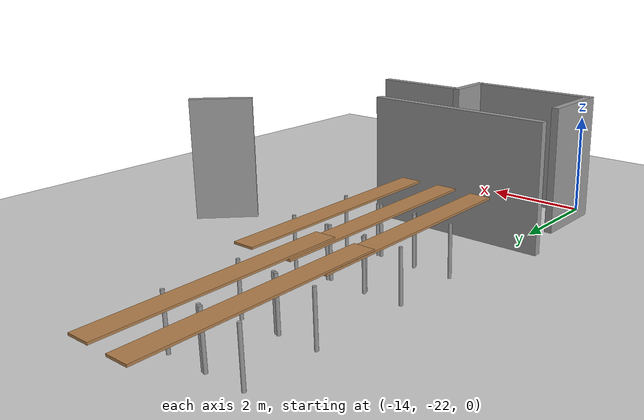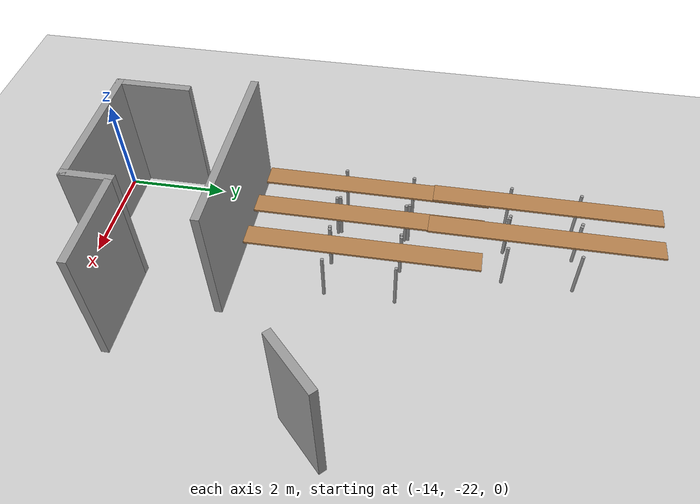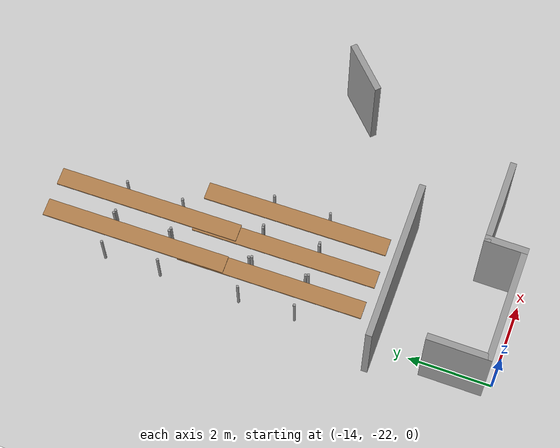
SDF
<sdf version="1.6">
 <world name="default">
  <model name="ground_plane">
   <static>1</static>
   <link name="link">
    <collision name="collision">
     <geometry><plane><normal>0 0 1</normal><size>100 100</size></plane></geometry>
     <surface><friction><ode><mu>100</mu><mu2>50</mu2></ode></friction></surface>
    </collision>
    <visual name="visual">
     <cast_shadows>0</cast_shadows>
     <geometry><plane><normal>0 0 1</normal><size>100 100</size></plane></geometry>
     <material>
      <script><uri>file://media/materials/scripts/gazebo.material</uri><name>Gazebo/Grey</name></script>
     </material>
    </visual>
   </link>
  </model>
  <model name="ca_vignal_1">
   <pose>-8.21048 -6.13752 0 0 -0 0</pose>
   <link name="Wall_14">
    <collision name="Wall_14_Collision">
     <geometry><box><size>3.75 0.15 2.5</size></box></geometry>
     <pose>0 0 1.25 0 -0 0</pose>
    </collision>
    <visual name="Wall_14_Visual">
     <pose>0 0 1.25 0 -0 0</pose>
     <geometry><box><size>3.75 0.15 2.5</size></box></geometry>
     <material>
      <script><uri>file://media/materials/scripts/gazebo.material</uri><name>Gazebo/Grey</name></script>
      <ambient>1 1 1 1</ambient>
     </material>
    </visual>
    <pose>-4.55164 -13.0277 0 0 -0 0</pose>
   </link>
   <link name="Wall_44">
    <collision name="Wall_44_Collision">
     <geometry><box><size>1.25 0.15 2.5</size></box></geometry>
     <pose>0 0 1.25 0 -0 0</pose>
    </collision>
    <visual name="Wall_44_Visual">
     <pose>0 0 1.25 0 -0 0</pose>
     <geometry><box><size>1.25 0.15 2.5</size></box></geometry>
     <material>
      <script><uri>file://media/materials/scripts/gazebo.material</uri><name>Gazebo/Grey</name></script>
      <ambient>1 1 1 1</ambient>
     </material>
    </visual>
    <pose>-0.323158 -10.8959 0 0 -0 0.785398</pose>
   </link>
   <link name="Wall_65">
    <collision name="Wall_65_Collision">
     <geometry><box><size>1.5 0.15 2.5</size></box></geometry>
     <pose>0 0 1.25 0 -0 0</pose>
    </collision>
    <visual name="Wall_65_Visual">
     <pose>0 0 1.25 0 -0 0</pose>
     <geometry><box><size>1.5 0.15 2.5</size></box></geometry>
     <material>
      <script><uri>file://media/materials/scripts/gazebo.material</uri><name>Gazebo/Grey</name></script>
      <ambient>1 1 1 1</ambient>
     </material>
    </visual>
    <pose>-6.01238 -14.9495 0 0 0 -1.5708</pose>
   </link>
   <link name="Wall_66">
    <collision name="Wall_66_Collision">
     <geometry><box><size>2.75 0.15 2.5</size></box></geometry>
     <pose>0 0 1.25 0 -0 0</pose>
    </collision>
    <visual name="Wall_66_Visual">
     <pose>0 0 1.25 0 -0 0</pose>
     <geometry><box><size>2.75 0.15 2.5</size></box></geometry>
     <material>
      <script><uri>file://media/materials/scripts/gazebo.material</uri><name>Gazebo/Grey</name></script>
      <ambient>1 1 1 1</ambient>
     </material>
    </visual>
    <pose>-4.71238 -15.6245 0 0 -0 0</pose>
   </link>
   <link name="Wall_67">
    <collision name="Wall_67_Collision">
     <geometry><box><size>1 0.15 2.5</size></box></geometry>
     <pose>0 0 1.25 0 -0 0</pose>
    </collision>
    <visual name="Wall_67_Visual">
     <pose>0 0 1.25 0 -0 0</pose>
     <geometry><box><size>1 0.15 2.5</size></box></geometry>
     <material>
      <script><uri>file://media/materials/scripts/gazebo.material</uri><name>Gazebo/Grey</name></script>
      <ambient>1 1 1 1</ambient>
     </material>
    </visual>
    <pose>-3.41238 -15.1995 0 0 -0 1.5708</pose>
   </link>
   <link name="Wall_68">
    <collision name="Wall_68_Collision">
     <geometry><box><size>2 0.15 2.5</size></box></geometry>
     <pose>0 0 1.25 0 -0 0</pose>
    </collision>
    <visual name="Wall_68_Visual">
     <pose>0 0 1.25 0 -0 0</pose>
     <geometry><box><size>2 0.15 2.5</size></box></geometry>
     <material>
      <script><uri>file://media/materials/scripts/gazebo.material</uri><name>Gazebo/Grey</name></script>
      <ambient>1 1 1 1</ambient>
     </material>
    </visual>
    <pose>-2.48738 -14.7745 0 0 -0 0</pose>
   </link>
   <static>1</static>
  </model>
  <model name="tablesclass">
   <link name="link">
    <inertial>
     <inertia><ixx>0</ixx><ixy>0</ixy><ixz>0</ixz><iyy>0</iyy><iyz>0</iyz><izz>0</izz></inertia>
     <mass>1.73923</mass>
    </inertial>
    <visual name="front_right_leg">
     <pose>0.68 -0.38 0.5 0 -0 0</pose>
     <geometry><cylinder><radius>0.0324505</radius><length>1</length></cylinder></geometry>
     <material>
      <script><uri>file://media/materials/scripts/gazebo.material</uri><name>Gazebo/Grey</name></script>
      <ambient>0.3 0.3 0.3 1</ambient>
      <diffuse>0.7 0.7 0.7 1</diffuse>
      <specular>0.01 0.01 0.01 1</specular>
      <emissive>0 0 0 1</emissive>
     </material>
    </visual>
    <visual name="back_left_leg">
     <pose>-0.68 0.38 0.5 0 -0 0</pose>
     <geometry><cylinder><radius>0.0324505</radius><length>1</length></cylinder></geometry>
     <material>
      <script><uri>file://media/materials/scripts/gazebo.material</uri><name>Gazebo/Grey</name></script>
      <ambient>0.3 0.3 0.3 1</ambient>
      <diffuse>0.7 0.7 0.7 1</diffuse>
      <specular>0.01 0.01 0.01 1</specular>
      <emissive>0 0 0 1</emissive>
     </material>
    </visual>
    <visual name="front_left_leg">
     <pose>0.68 0.38 0.5 0 -0 0</pose>
     <geometry><cylinder><radius>0.0324505</radius><length>1</length></cylinder></geometry>
     <material>
      <script><uri>file://media/materials/scripts/gazebo.material</uri><name>Gazebo/Grey</name></script>
      <ambient>0.3 0.3 0.3 1</ambient>
      <diffuse>0.7 0.7 0.7 1</diffuse>
      <specular>0.01 0.01 0.01 1</specular>
      <emissive>0 0 0 1</emissive>
     </material>
    </visual>
    <visual name="visual1">
     <pose>0 0 1 0 -0 0</pose>
     <geometry><box><size>4.38513 0.412326 0.04</size></box></geometry>
     <material>
      <script><uri>file://media/materials/scripts/gazebo.material</uri><name>Gazebo/Wood</name></script>
      <ambient>1 1 1 1</ambient>
      <diffuse>1 1 1 1</diffuse>
      <specular>0.2 0.2 0.2 1</specular>
      <emissive>0 0 0 1</emissive>
     </material>
    </visual>
    <visual name="back_right_leg">
     <pose>-0.68 -0.38 0.5 0 -0 0</pose>
     <geometry><cylinder><radius>0.0324505</radius><length>1</length></cylinder></geometry>
     <material>
      <script><uri>file://media/materials/scripts/gazebo.material</uri><name>Gazebo/Grey</name></script>
      <ambient>0.3 0.3 0.3 1</ambient>
      <diffuse>0.7 0.7 0.7 1</diffuse>
      <specular>0.01 0.01 0.01 1</specular>
      <emissive>0 0 0 1</emissive>
     </material>
    </visual>
    <collision name="front_left_leg">
     <pose>0.68 0.38 0.5 0 -0 0</pose>
     <geometry><cylinder><radius>0.03245</radius><length>1</length></cylinder></geometry>
     <surface>
      <friction>
       <ode><mu>1</mu><mu2>1</mu2><fdir1>0 0 0</fdir1><slip1>0</slip1><slip2>0</slip2></ode>
       <torsional>
        <coefficient>1</coefficient>
        <patch_radius>0</patch_radius>
        <surface_radius>0</surface_radius>
        <use_patch_radius>1</use_patch_radius>
        <ode><slip>0</slip></ode>
       </torsional>
      </friction>
      <bounce><restitution_coefficient>0</restitution_coefficient><threshold>1e+06</threshold></bounce>
      <contact>
       <collide_without_contact>0</collide_without_contact>
       <collide_without_contact_bitmask>1</collide_without_contact_bitmask>
       <collide_bitmask>1</collide_bitmask>
       <ode>
        <soft_cfm>0</soft_cfm>
        <soft_erp>0.2</soft_erp>
        <kp>1e+13</kp>
        <kd>1</kd>
        <max_vel>0.01</max_vel>
        <min_depth>0</min_depth>
       </ode>
       <bullet>
        <split_impulse>1</split_impulse>
        <split_impulse_penetration_threshold>-0.01</split_impulse_penetration_threshold>
        <soft_cfm>0</soft_cfm>
        <soft_erp>0.2</soft_erp>
        <kp>1e+13</kp>
        <kd>1</kd>
       </bullet>
      </contact>
     </surface>
    </collision>
    <collision name="front_right_leg">
     <pose>0.68 -0.38 0.5 0 -0 0</pose>
     <geometry><cylinder><radius>0.03245</radius><length>1</length></cylinder></geometry>
     <surface>
      <friction>
       <ode><mu>1</mu><mu2>1</mu2><fdir1>0 0 0</fdir1><slip1>0</slip1><slip2>0</slip2></ode>
       <torsional>
        <coefficient>1</coefficient>
        <patch_radius>0</patch_radius>
        <surface_radius>0</surface_radius>
        <use_patch_radius>1</use_patch_radius>
        <ode><slip>0</slip></ode>
       </torsional>
      </friction>
      <bounce><restitution_coefficient>0</restitution_coefficient><threshold>1e+06</threshold></bounce>
      <contact>
       <collide_without_contact>0</collide_without_contact>
       <collide_without_contact_bitmask>1</collide_without_contact_bitmask>
       <collide_bitmask>1</collide_bitmask>
       <ode>
        <soft_cfm>0</soft_cfm>
        <soft_erp>0.2</soft_erp>
        <kp>1e+13</kp>
        <kd>1</kd>
        <max_vel>0.01</max_vel>
        <min_depth>0</min_depth>
       </ode>
       <bullet>
        <split_impulse>1</split_impulse>
        <split_impulse_penetration_threshold>-0.01</split_impulse_penetration_threshold>
        <soft_cfm>0</soft_cfm>
        <soft_erp>0.2</soft_erp>
        <kp>1e+13</kp>
        <kd>1</kd>
       </bullet>
      </contact>
     </surface>
    </collision>
    <collision name="back_left_leg">
     <pose>-0.68 0.38 0.5 0 -0 0</pose>
     <geometry><cylinder><radius>0.03245</radius><length>1</length></cylinder></geometry>
     <surface>
      <friction>
       <ode><mu>1</mu><mu2>1</mu2><fdir1>0 0 0</fdir1><slip1>0</slip1><slip2>0</slip2></ode>
       <torsional>
        <coefficient>1</coefficient>
        <patch_radius>0</patch_radius>
        <surface_radius>0</surface_radius>
        <use_patch_radius>1</use_patch_radius>
        <ode><slip>0</slip></ode>
       </torsional>
      </friction>
      <bounce><restitution_coefficient>0</restitution_coefficient><threshold>1e+06</threshold></bounce>
      <contact>
       <collide_without_contact>0</collide_without_contact>
       <collide_without_contact_bitmask>1</collide_without_contact_bitmask>
       <collide_bitmask>1</collide_bitmask>
       <ode>
        <soft_cfm>0</soft_cfm>
        <soft_erp>0.2</soft_erp>
        <kp>1e+13</kp>
        <kd>1</kd>
        <max_vel>0.01</max_vel>
        <min_depth>0</min_depth>
       </ode>
       <bullet>
        <split_impulse>1</split_impulse>
        <split_impulse_penetration_threshold>-0.01</split_impulse_penetration_threshold>
        <soft_cfm>0</soft_cfm>
        <soft_erp>0.2</soft_erp>
        <kp>1e+13</kp>
        <kd>1</kd>
       </bullet>
      </contact>
     </surface>
    </collision>
    <collision name="back_right_leg">
     <pose>-0.68 -0.38 0.5 0 -0 0</pose>
     <geometry><cylinder><radius>0.03245</radius><length>1</length></cylinder></geometry>
     <surface>
      <friction>
       <ode><mu>1</mu><mu2>1</mu2><fdir1>0 0 0</fdir1><slip1>0</slip1><slip2>0</slip2></ode>
       <torsional>
        <coefficient>1</coefficient>
        <patch_radius>0</patch_radius>
        <surface_radius>0</surface_radius>
        <use_patch_radius>1</use_patch_radius>
        <ode><slip>0</slip></ode>
       </torsional>
      </friction>
      <bounce><restitution_coefficient>0</restitution_coefficient><threshold>1e+06</threshold></bounce>
      <contact>
       <collide_without_contact>0</collide_without_contact>
       <collide_without_contact_bitmask>1</collide_without_contact_bitmask>
       <collide_bitmask>1</collide_bitmask>
       <ode>
        <soft_cfm>0</soft_cfm>
        <soft_erp>0.2</soft_erp>
        <kp>1e+13</kp>
        <kd>1</kd>
        <max_vel>0.01</max_vel>
        <min_depth>0</min_depth>
       </ode>
       <bullet>
        <split_impulse>1</split_impulse>
        <split_impulse_penetration_threshold>-0.01</split_impulse_penetration_threshold>
        <soft_cfm>0</soft_cfm>
        <soft_erp>0.2</soft_erp>
        <kp>1e+13</kp>
        <kd>1</kd>
       </bullet>
      </contact>
     </surface>
    </collision>
    <collision name="surface">
     <pose>0 0 1 0 -0 0</pose>
     <geometry><box><size>4.69836 0.412326 0.03</size></box></geometry>
     <surface>
      <friction>
       <ode><mu>0.6</mu><mu2>0.6</mu2><fdir1>0 0 0</fdir1><slip1>0</slip1><slip2>0</slip2></ode>
       <torsional>
        <coefficient>1</coefficient>
        <patch_radius>0</patch_radius>
        <surface_radius>0</surface_radius>
        <use_patch_radius>1</use_patch_radius>
        <ode><slip>0</slip></ode>
       </torsional>
      </friction>
      <bounce><restitution_coefficient>0</restitution_coefficient><threshold>1e+06</threshold></bounce>
      <contact>
       <collide_without_contact>0</collide_without_contact>
       <collide_without_contact_bitmask>1</collide_without_contact_bitmask>
       <collide_bitmask>1</collide_bitmask>
       <ode>
        <soft_cfm>0</soft_cfm>
        <soft_erp>0.2</soft_erp>
        <kp>1e+13</kp>
        <kd>1</kd>
        <max_vel>0.01</max_vel>
        <min_depth>0</min_depth>
       </ode>
       <bullet>
        <split_impulse>1</split_impulse>
        <split_impulse_penetration_threshold>-0.01</split_impulse_penetration_threshold>
        <soft_cfm>0</soft_cfm>
        <soft_erp>0.2</soft_erp>
        <kp>1e+13</kp>
        <kd>1</kd>
       </bullet>
      </contact>
     </surface>
    </collision>
   </link>
   <static>0</static>
   <pose>-13.6288 -16.5817 0.004332 -3e-06 -0.008367 -1.5634</pose>
  </model>
  <model name="tablesclass_clone">
   <link name="link">
    <inertial>
     <inertia><ixx>0</ixx><ixy>0</ixy><ixz>0</ixz><iyy>0</iyy><iyz>0</iyz><izz>0</izz></inertia>
     <mass>1.73923</mass>
    </inertial>
    <visual name="front_right_leg">
     <pose>0.68 -0.38 0.5 0 -0 0</pose>
     <geometry><cylinder><radius>0.0324505</radius><length>1</length></cylinder></geometry>
     <material>
      <script><uri>file://media/materials/scripts/gazebo.material</uri><name>Gazebo/Grey</name></script>
      <ambient>0.3 0.3 0.3 1</ambient>
      <diffuse>0.7 0.7 0.7 1</diffuse>
      <specular>0.01 0.01 0.01 1</specular>
      <emissive>0 0 0 1</emissive>
     </material>
    </visual>
    <visual name="back_left_leg">
     <pose>-0.68 0.38 0.5 0 -0 0</pose>
     <geometry><cylinder><radius>0.0324505</radius><length>1</length></cylinder></geometry>
     <material>
      <script><uri>file://media/materials/scripts/gazebo.material</uri><name>Gazebo/Grey</name></script>
      <ambient>0.3 0.3 0.3 1</ambient>
      <diffuse>0.7 0.7 0.7 1</diffuse>
      <specular>0.01 0.01 0.01 1</specular>
      <emissive>0 0 0 1</emissive>
     </material>
    </visual>
    <visual name="front_left_leg">
     <pose>0.68 0.38 0.5 0 -0 0</pose>
     <geometry><cylinder><radius>0.0324505</radius><length>1</length></cylinder></geometry>
     <material>
      <script><uri>file://media/materials/scripts/gazebo.material</uri><name>Gazebo/Grey</name></script>
      <ambient>0.3 0.3 0.3 1</ambient>
      <diffuse>0.7 0.7 0.7 1</diffuse>
      <specular>0.01 0.01 0.01 1</specular>
      <emissive>0 0 0 1</emissive>
     </material>
    </visual>
    <visual name="visual1">
     <pose>0 0 1 0 -0 0</pose>
     <geometry><box><size>4.38513 0.412326 0.04</size></box></geometry>
     <material>
      <script><uri>file://media/materials/scripts/gazebo.material</uri><name>Gazebo/Wood</name></script>
      <ambient>1 1 1 1</ambient>
      <diffuse>1 1 1 1</diffuse>
      <specular>0.2 0.2 0.2 1</specular>
      <emissive>0 0 0 1</emissive>
     </material>
    </visual>
    <visual name="back_right_leg">
     <pose>-0.68 -0.38 0.5 0 -0 0</pose>
     <geometry><cylinder><radius>0.0324505</radius><length>1</length></cylinder></geometry>
     <material>
      <script><uri>file://media/materials/scripts/gazebo.material</uri><name>Gazebo/Grey</name></script>
      <ambient>0.3 0.3 0.3 1</ambient>
      <diffuse>0.7 0.7 0.7 1</diffuse>
      <specular>0.01 0.01 0.01 1</specular>
      <emissive>0 0 0 1</emissive>
     </material>
    </visual>
    <collision name="front_left_leg">
     <pose>0.68 0.38 0.5 0 -0 0</pose>
     <geometry><cylinder><radius>0.03245</radius><length>1</length></cylinder></geometry>
     <surface>
      <friction>
       <ode><mu>1</mu><mu2>1</mu2><fdir1>0 0 0</fdir1><slip1>0</slip1><slip2>0</slip2></ode>
       <torsional>
        <coefficient>1</coefficient>
        <patch_radius>0</patch_radius>
        <surface_radius>0</surface_radius>
        <use_patch_radius>1</use_patch_radius>
        <ode><slip>0</slip></ode>
       </torsional>
      </friction>
      <bounce><restitution_coefficient>0</restitution_coefficient><threshold>1e+06</threshold></bounce>
      <contact>
       <collide_without_contact>0</collide_without_contact>
       <collide_without_contact_bitmask>1</collide_without_contact_bitmask>
       <collide_bitmask>1</collide_bitmask>
       <ode>
        <soft_cfm>0</soft_cfm>
        <soft_erp>0.2</soft_erp>
        <kp>1e+13</kp>
        <kd>1</kd>
        <max_vel>0.01</max_vel>
        <min_depth>0</min_depth>
       </ode>
       <bullet>
        <split_impulse>1</split_impulse>
        <split_impulse_penetration_threshold>-0.01</split_impulse_penetration_threshold>
        <soft_cfm>0</soft_cfm>
        <soft_erp>0.2</soft_erp>
        <kp>1e+13</kp>
        <kd>1</kd>
       </bullet>
      </contact>
     </surface>
    </collision>
    <collision name="front_right_leg">
     <pose>0.68 -0.38 0.5 0 -0 0</pose>
     <geometry><cylinder><radius>0.03245</radius><length>1</length></cylinder></geometry>
     <surface>
      <friction>
       <ode><mu>1</mu><mu2>1</mu2><fdir1>0 0 0</fdir1><slip1>0</slip1><slip2>0</slip2></ode>
       <torsional>
        <coefficient>1</coefficient>
        <patch_radius>0</patch_radius>
        <surface_radius>0</surface_radius>
        <use_patch_radius>1</use_patch_radius>
        <ode><slip>0</slip></ode>
       </torsional>
      </friction>
      <bounce><restitution_coefficient>0</restitution_coefficient><threshold>1e+06</threshold></bounce>
      <contact>
       <collide_without_contact>0</collide_without_contact>
       <collide_without_contact_bitmask>1</collide_without_contact_bitmask>
       <collide_bitmask>1</collide_bitmask>
       <ode>
        <soft_cfm>0</soft_cfm>
        <soft_erp>0.2</soft_erp>
        <kp>1e+13</kp>
        <kd>1</kd>
        <max_vel>0.01</max_vel>
        <min_depth>0</min_depth>
       </ode>
       <bullet>
        <split_impulse>1</split_impulse>
        <split_impulse_penetration_threshold>-0.01</split_impulse_penetration_threshold>
        <soft_cfm>0</soft_cfm>
        <soft_erp>0.2</soft_erp>
        <kp>1e+13</kp>
        <kd>1</kd>
       </bullet>
      </contact>
     </surface>
    </collision>
    <collision name="back_left_leg">
     <pose>-0.68 0.38 0.5 0 -0 0</pose>
     <geometry><cylinder><radius>0.03245</radius><length>1</length></cylinder></geometry>
     <surface>
      <friction>
       <ode><mu>1</mu><mu2>1</mu2><fdir1>0 0 0</fdir1><slip1>0</slip1><slip2>0</slip2></ode>
       <torsional>
        <coefficient>1</coefficient>
        <patch_radius>0</patch_radius>
        <surface_radius>0</surface_radius>
        <use_patch_radius>1</use_patch_radius>
        <ode><slip>0</slip></ode>
       </torsional>
      </friction>
      <bounce><restitution_coefficient>0</restitution_coefficient><threshold>1e+06</threshold></bounce>
      <contact>
       <collide_without_contact>0</collide_without_contact>
       <collide_without_contact_bitmask>1</collide_without_contact_bitmask>
       <collide_bitmask>1</collide_bitmask>
       <ode>
        <soft_cfm>0</soft_cfm>
        <soft_erp>0.2</soft_erp>
        <kp>1e+13</kp>
        <kd>1</kd>
        <max_vel>0.01</max_vel>
        <min_depth>0</min_depth>
       </ode>
       <bullet>
        <split_impulse>1</split_impulse>
        <split_impulse_penetration_threshold>-0.01</split_impulse_penetration_threshold>
        <soft_cfm>0</soft_cfm>
        <soft_erp>0.2</soft_erp>
        <kp>1e+13</kp>
        <kd>1</kd>
       </bullet>
      </contact>
     </surface>
    </collision>
    <collision name="back_right_leg">
     <pose>-0.68 -0.38 0.5 0 -0 0</pose>
     <geometry><cylinder><radius>0.03245</radius><length>1</length></cylinder></geometry>
     <surface>
      <friction>
       <ode><mu>1</mu><mu2>1</mu2><fdir1>0 0 0</fdir1><slip1>0</slip1><slip2>0</slip2></ode>
       <torsional>
        <coefficient>1</coefficient>
        <patch_radius>0</patch_radius>
        <surface_radius>0</surface_radius>
        <use_patch_radius>1</use_patch_radius>
        <ode><slip>0</slip></ode>
       </torsional>
      </friction>
      <bounce><restitution_coefficient>0</restitution_coefficient><threshold>1e+06</threshold></bounce>
      <contact>
       <collide_without_contact>0</collide_without_contact>
       <collide_without_contact_bitmask>1</collide_without_contact_bitmask>
       <collide_bitmask>1</collide_bitmask>
       <ode>
        <soft_cfm>0</soft_cfm>
        <soft_erp>0.2</soft_erp>
        <kp>1e+13</kp>
        <kd>1</kd>
        <max_vel>0.01</max_vel>
        <min_depth>0</min_depth>
       </ode>
       <bullet>
        <split_impulse>1</split_impulse>
        <split_impulse_penetration_threshold>-0.01</split_impulse_penetration_threshold>
        <soft_cfm>0</soft_cfm>
        <soft_erp>0.2</soft_erp>
        <kp>1e+13</kp>
        <kd>1</kd>
       </bullet>
      </contact>
     </surface>
    </collision>
    <collision name="surface">
     <pose>0 0 1 0 -0 0</pose>
     <geometry><box><size>4.69836 0.412326 0.03</size></box></geometry>
     <surface>
      <friction>
       <ode><mu>0.6</mu><mu2>0.6</mu2><fdir1>0 0 0</fdir1><slip1>0</slip1><slip2>0</slip2></ode>
       <torsional>
        <coefficient>1</coefficient>
        <patch_radius>0</patch_radius>
        <surface_radius>0</surface_radius>
        <use_patch_radius>1</use_patch_radius>
        <ode><slip>0</slip></ode>
       </torsional>
      </friction>
      <bounce><restitution_coefficient>0</restitution_coefficient><threshold>1e+06</threshold></bounce>
      <contact>
       <collide_without_contact>0</collide_without_contact>
       <collide_without_contact_bitmask>1</collide_without_contact_bitmask>
       <collide_bitmask>1</collide_bitmask>
       <ode>
        <soft_cfm>0</soft_cfm>
        <soft_erp>0.2</soft_erp>
        <kp>1e+13</kp>
        <kd>1</kd>
        <max_vel>0.01</max_vel>
        <min_depth>0</min_depth>
       </ode>
       <bullet>
        <split_impulse>1</split_impulse>
        <split_impulse_penetration_threshold>-0.01</split_impulse_penetration_threshold>
        <soft_cfm>0</soft_cfm>
        <soft_erp>0.2</soft_erp>
        <kp>1e+13</kp>
        <kd>1</kd>
       </bullet>
      </contact>
     </surface>
    </collision>
   </link>
   <static>0</static>
   <pose>-13.6453 -13.2879 0.006284 2e-06 -0.008821 -1.56384</pose>
  </model>
  <model name="tablesclass_clone_clone">
   <link name="link">
    <inertial>
     <inertia><ixx>0</ixx><ixy>0</ixy><ixz>0</ixz><iyy>0</iyy><iyz>0</iyz><izz>0</izz></inertia>
     <mass>1.73923</mass>
    </inertial>
    <visual name="front_right_leg">
     <pose>0.68 -0.38 0.5 0 -0 0</pose>
     <geometry><cylinder><radius>0.0324505</radius><length>1</length></cylinder></geometry>
     <material>
      <script><uri>file://media/materials/scripts/gazebo.material</uri><name>Gazebo/Grey</name></script>
      <ambient>0.3 0.3 0.3 1</ambient>
      <diffuse>0.7 0.7 0.7 1</diffuse>
      <specular>0.01 0.01 0.01 1</specular>
      <emissive>0 0 0 1</emissive>
     </material>
    </visual>
    <visual name="back_left_leg">
     <pose>-0.68 0.38 0.5 0 -0 0</pose>
     <geometry><cylinder><radius>0.0324505</radius><length>1</length></cylinder></geometry>
     <material>
      <script><uri>file://media/materials/scripts/gazebo.material</uri><name>Gazebo/Grey</name></script>
      <ambient>0.3 0.3 0.3 1</ambient>
      <diffuse>0.7 0.7 0.7 1</diffuse>
      <specular>0.01 0.01 0.01 1</specular>
      <emissive>0 0 0 1</emissive>
     </material>
    </visual>
    <visual name="front_left_leg">
     <pose>0.68 0.38 0.5 0 -0 0</pose>
     <geometry><cylinder><radius>0.0324505</radius><length>1</length></cylinder></geometry>
     <material>
      <script><uri>file://media/materials/scripts/gazebo.material</uri><name>Gazebo/Grey</name></script>
      <ambient>0.3 0.3 0.3 1</ambient>
      <diffuse>0.7 0.7 0.7 1</diffuse>
      <specular>0.01 0.01 0.01 1</specular>
      <emissive>0 0 0 1</emissive>
     </material>
    </visual>
    <visual name="visual1">
     <pose>0 0 1 0 -0 0</pose>
     <geometry><box><size>4.38513 0.412326 0.04</size></box></geometry>
     <material>
      <script><uri>file://media/materials/scripts/gazebo.material</uri><name>Gazebo/Wood</name></script>
      <ambient>1 1 1 1</ambient>
      <diffuse>1 1 1 1</diffuse>
      <specular>0.2 0.2 0.2 1</specular>
      <emissive>0 0 0 1</emissive>
     </material>
    </visual>
    <visual name="back_right_leg">
     <pose>-0.68 -0.38 0.5 0 -0 0</pose>
     <geometry><cylinder><radius>0.0324505</radius><length>1</length></cylinder></geometry>
     <material>
      <script><uri>file://media/materials/scripts/gazebo.material</uri><name>Gazebo/Grey</name></script>
      <ambient>0.3 0.3 0.3 1</ambient>
      <diffuse>0.7 0.7 0.7 1</diffuse>
      <specular>0.01 0.01 0.01 1</specular>
      <emissive>0 0 0 1</emissive>
     </material>
    </visual>
    <collision name="front_left_leg">
     <pose>0.68 0.38 0.5 0 -0 0</pose>
     <geometry><cylinder><radius>0.03245</radius><length>1</length></cylinder></geometry>
     <surface>
      <friction>
       <ode><mu>1</mu><mu2>1</mu2><fdir1>0 0 0</fdir1><slip1>0</slip1><slip2>0</slip2></ode>
       <torsional>
        <coefficient>1</coefficient>
        <patch_radius>0</patch_radius>
        <surface_radius>0</surface_radius>
        <use_patch_radius>1</use_patch_radius>
        <ode><slip>0</slip></ode>
       </torsional>
      </friction>
      <bounce><restitution_coefficient>0</restitution_coefficient><threshold>1e+06</threshold></bounce>
      <contact>
       <collide_without_contact>0</collide_without_contact>
       <collide_without_contact_bitmask>1</collide_without_contact_bitmask>
       <collide_bitmask>1</collide_bitmask>
       <ode>
        <soft_cfm>0</soft_cfm>
        <soft_erp>0.2</soft_erp>
        <kp>1e+13</kp>
        <kd>1</kd>
        <max_vel>0.01</max_vel>
        <min_depth>0</min_depth>
       </ode>
       <bullet>
        <split_impulse>1</split_impulse>
        <split_impulse_penetration_threshold>-0.01</split_impulse_penetration_threshold>
        <soft_cfm>0</soft_cfm>
        <soft_erp>0.2</soft_erp>
        <kp>1e+13</kp>
        <kd>1</kd>
       </bullet>
      </contact>
     </surface>
    </collision>
    <collision name="front_right_leg">
     <pose>0.68 -0.38 0.5 0 -0 0</pose>
     <geometry><cylinder><radius>0.03245</radius><length>1</length></cylinder></geometry>
     <surface>
      <friction>
       <ode><mu>1</mu><mu2>1</mu2><fdir1>0 0 0</fdir1><slip1>0</slip1><slip2>0</slip2></ode>
       <torsional>
        <coefficient>1</coefficient>
        <patch_radius>0</patch_radius>
        <surface_radius>0</surface_radius>
        <use_patch_radius>1</use_patch_radius>
        <ode><slip>0</slip></ode>
       </torsional>
      </friction>
      <bounce><restitution_coefficient>0</restitution_coefficient><threshold>1e+06</threshold></bounce>
      <contact>
       <collide_without_contact>0</collide_without_contact>
       <collide_without_contact_bitmask>1</collide_without_contact_bitmask>
       <collide_bitmask>1</collide_bitmask>
       <ode>
        <soft_cfm>0</soft_cfm>
        <soft_erp>0.2</soft_erp>
        <kp>1e+13</kp>
        <kd>1</kd>
        <max_vel>0.01</max_vel>
        <min_depth>0</min_depth>
       </ode>
       <bullet>
        <split_impulse>1</split_impulse>
        <split_impulse_penetration_threshold>-0.01</split_impulse_penetration_threshold>
        <soft_cfm>0</soft_cfm>
        <soft_erp>0.2</soft_erp>
        <kp>1e+13</kp>
        <kd>1</kd>
       </bullet>
      </contact>
     </surface>
    </collision>
    <collision name="back_left_leg">
     <pose>-0.68 0.38 0.5 0 -0 0</pose>
     <geometry><cylinder><radius>0.03245</radius><length>1</length></cylinder></geometry>
     <surface>
      <friction>
       <ode><mu>1</mu><mu2>1</mu2><fdir1>0 0 0</fdir1><slip1>0</slip1><slip2>0</slip2></ode>
       <torsional>
        <coefficient>1</coefficient>
        <patch_radius>0</patch_radius>
        <surface_radius>0</surface_radius>
        <use_patch_radius>1</use_patch_radius>
        <ode><slip>0</slip></ode>
       </torsional>
      </friction>
      <bounce><restitution_coefficient>0</restitution_coefficient><threshold>1e+06</threshold></bounce>
      <contact>
       <collide_without_contact>0</collide_without_contact>
       <collide_without_contact_bitmask>1</collide_without_contact_bitmask>
       <collide_bitmask>1</collide_bitmask>
       <ode>
        <soft_cfm>0</soft_cfm>
        <soft_erp>0.2</soft_erp>
        <kp>1e+13</kp>
        <kd>1</kd>
        <max_vel>0.01</max_vel>
        <min_depth>0</min_depth>
       </ode>
       <bullet>
        <split_impulse>1</split_impulse>
        <split_impulse_penetration_threshold>-0.01</split_impulse_penetration_threshold>
        <soft_cfm>0</soft_cfm>
        <soft_erp>0.2</soft_erp>
        <kp>1e+13</kp>
        <kd>1</kd>
       </bullet>
      </contact>
     </surface>
    </collision>
    <collision name="back_right_leg">
     <pose>-0.68 -0.38 0.5 0 -0 0</pose>
     <geometry><cylinder><radius>0.03245</radius><length>1</length></cylinder></geometry>
     <surface>
      <friction>
       <ode><mu>1</mu><mu2>1</mu2><fdir1>0 0 0</fdir1><slip1>0</slip1><slip2>0</slip2></ode>
       <torsional>
        <coefficient>1</coefficient>
        <patch_radius>0</patch_radius>
        <surface_radius>0</surface_radius>
        <use_patch_radius>1</use_patch_radius>
        <ode><slip>0</slip></ode>
       </torsional>
      </friction>
      <bounce><restitution_coefficient>0</restitution_coefficient><threshold>1e+06</threshold></bounce>
      <contact>
       <collide_without_contact>0</collide_without_contact>
       <collide_without_contact_bitmask>1</collide_without_contact_bitmask>
       <collide_bitmask>1</collide_bitmask>
       <ode>
        <soft_cfm>0</soft_cfm>
        <soft_erp>0.2</soft_erp>
        <kp>1e+13</kp>
        <kd>1</kd>
        <max_vel>0.01</max_vel>
        <min_depth>0</min_depth>
       </ode>
       <bullet>
        <split_impulse>1</split_impulse>
        <split_impulse_penetration_threshold>-0.01</split_impulse_penetration_threshold>
        <soft_cfm>0</soft_cfm>
        <soft_erp>0.2</soft_erp>
        <kp>1e+13</kp>
        <kd>1</kd>
       </bullet>
      </contact>
     </surface>
    </collision>
    <collision name="surface">
     <pose>0 0 1 0 -0 0</pose>
     <geometry><box><size>4.69836 0.412326 0.03</size></box></geometry>
     <surface>
      <friction>
       <ode><mu>0.6</mu><mu2>0.6</mu2><fdir1>0 0 0</fdir1><slip1>0</slip1><slip2>0</slip2></ode>
       <torsional>
        <coefficient>1</coefficient>
        <patch_radius>0</patch_radius>
        <surface_radius>0</surface_radius>
        <use_patch_radius>1</use_patch_radius>
        <ode><slip>0</slip></ode>
       </torsional>
      </friction>
      <bounce><restitution_coefficient>0</restitution_coefficient><threshold>1e+06</threshold></bounce>
      <contact>
       <collide_without_contact>0</collide_without_contact>
       <collide_without_contact_bitmask>1</collide_without_contact_bitmask>
       <collide_bitmask>1</collide_bitmask>
       <ode>
        <soft_cfm>0</soft_cfm>
        <soft_erp>0.2</soft_erp>
        <kp>1e+13</kp>
        <kd>1</kd>
        <max_vel>0.01</max_vel>
        <min_depth>0</min_depth>
       </ode>
       <bullet>
        <split_impulse>1</split_impulse>
        <split_impulse_penetration_threshold>-0.01</split_impulse_penetration_threshold>
        <soft_cfm>0</soft_cfm>
        <soft_erp>0.2</soft_erp>
        <kp>1e+13</kp>
        <kd>1</kd>
       </bullet>
      </contact>
     </surface>
    </collision>
   </link>
   <static>0</static>
   <pose>-12.8409 -16.6374 0.004308 -6e-06 -0.008005 -1.56202</pose>
  </model>
  <model name="tablesclass_clone_0">
   <link name="link">
    <inertial>
     <inertia><ixx>0</ixx><ixy>0</ixy><ixz>0</ixz><iyy>0</iyy><iyz>0</iyz><izz>0</izz></inertia>
     <mass>1.73923</mass>
    </inertial>
    <visual name="front_right_leg">
     <pose>0.68 -0.38 0.5 0 -0 0</pose>
     <geometry><cylinder><radius>0.0324505</radius><length>1</length></cylinder></geometry>
     <material>
      <script><uri>file://media/materials/scripts/gazebo.material</uri><name>Gazebo/Grey</name></script>
      <ambient>0.3 0.3 0.3 1</ambient>
      <diffuse>0.7 0.7 0.7 1</diffuse>
      <specular>0.01 0.01 0.01 1</specular>
      <emissive>0 0 0 1</emissive>
     </material>
    </visual>
    <visual name="back_left_leg">
     <pose>-0.68 0.38 0.5 0 -0 0</pose>
     <geometry><cylinder><radius>0.0324505</radius><length>1</length></cylinder></geometry>
     <material>
      <script><uri>file://media/materials/scripts/gazebo.material</uri><name>Gazebo/Grey</name></script>
      <ambient>0.3 0.3 0.3 1</ambient>
      <diffuse>0.7 0.7 0.7 1</diffuse>
      <specular>0.01 0.01 0.01 1</specular>
      <emissive>0 0 0 1</emissive>
     </material>
    </visual>
    <visual name="front_left_leg">
     <pose>0.68 0.38 0.5 0 -0 0</pose>
     <geometry><cylinder><radius>0.0324505</radius><length>1</length></cylinder></geometry>
     <material>
      <script><uri>file://media/materials/scripts/gazebo.material</uri><name>Gazebo/Grey</name></script>
      <ambient>0.3 0.3 0.3 1</ambient>
      <diffuse>0.7 0.7 0.7 1</diffuse>
      <specular>0.01 0.01 0.01 1</specular>
      <emissive>0 0 0 1</emissive>
     </material>
    </visual>
    <visual name="visual1">
     <pose>0 0 1 0 -0 0</pose>
     <geometry><box><size>4.38513 0.412326 0.04</size></box></geometry>
     <material>
      <script><uri>file://media/materials/scripts/gazebo.material</uri><name>Gazebo/Wood</name></script>
      <ambient>1 1 1 1</ambient>
      <diffuse>1 1 1 1</diffuse>
      <specular>0.2 0.2 0.2 1</specular>
      <emissive>0 0 0 1</emissive>
     </material>
    </visual>
    <visual name="back_right_leg">
     <pose>-0.68 -0.38 0.5 0 -0 0</pose>
     <geometry><cylinder><radius>0.0324505</radius><length>1</length></cylinder></geometry>
     <material>
      <script><uri>file://media/materials/scripts/gazebo.material</uri><name>Gazebo/Grey</name></script>
      <ambient>0.3 0.3 0.3 1</ambient>
      <diffuse>0.7 0.7 0.7 1</diffuse>
      <specular>0.01 0.01 0.01 1</specular>
      <emissive>0 0 0 1</emissive>
     </material>
    </visual>
    <collision name="front_left_leg">
     <pose>0.68 0.38 0.5 0 -0 0</pose>
     <geometry><cylinder><radius>0.03245</radius><length>1</length></cylinder></geometry>
     <surface>
      <friction>
       <ode><mu>1</mu><mu2>1</mu2><fdir1>0 0 0</fdir1><slip1>0</slip1><slip2>0</slip2></ode>
       <torsional>
        <coefficient>1</coefficient>
        <patch_radius>0</patch_radius>
        <surface_radius>0</surface_radius>
        <use_patch_radius>1</use_patch_radius>
        <ode><slip>0</slip></ode>
       </torsional>
      </friction>
      <bounce><restitution_coefficient>0</restitution_coefficient><threshold>1e+06</threshold></bounce>
      <contact>
       <collide_without_contact>0</collide_without_contact>
       <collide_without_contact_bitmask>1</collide_without_contact_bitmask>
       <collide_bitmask>1</collide_bitmask>
       <ode>
        <soft_cfm>0</soft_cfm>
        <soft_erp>0.2</soft_erp>
        <kp>1e+13</kp>
        <kd>1</kd>
        <max_vel>0.01</max_vel>
        <min_depth>0</min_depth>
       </ode>
       <bullet>
        <split_impulse>1</split_impulse>
        <split_impulse_penetration_threshold>-0.01</split_impulse_penetration_threshold>
        <soft_cfm>0</soft_cfm>
        <soft_erp>0.2</soft_erp>
        <kp>1e+13</kp>
        <kd>1</kd>
       </bullet>
      </contact>
     </surface>
    </collision>
    <collision name="front_right_leg">
     <pose>0.68 -0.38 0.5 0 -0 0</pose>
     <geometry><cylinder><radius>0.03245</radius><length>1</length></cylinder></geometry>
     <surface>
      <friction>
       <ode><mu>1</mu><mu2>1</mu2><fdir1>0 0 0</fdir1><slip1>0</slip1><slip2>0</slip2></ode>
       <torsional>
        <coefficient>1</coefficient>
        <patch_radius>0</patch_radius>
        <surface_radius>0</surface_radius>
        <use_patch_radius>1</use_patch_radius>
        <ode><slip>0</slip></ode>
       </torsional>
      </friction>
      <bounce><restitution_coefficient>0</restitution_coefficient><threshold>1e+06</threshold></bounce>
      <contact>
       <collide_without_contact>0</collide_without_contact>
       <collide_without_contact_bitmask>1</collide_without_contact_bitmask>
       <collide_bitmask>1</collide_bitmask>
       <ode>
        <soft_cfm>0</soft_cfm>
        <soft_erp>0.2</soft_erp>
        <kp>1e+13</kp>
        <kd>1</kd>
        <max_vel>0.01</max_vel>
        <min_depth>0</min_depth>
       </ode>
       <bullet>
        <split_impulse>1</split_impulse>
        <split_impulse_penetration_threshold>-0.01</split_impulse_penetration_threshold>
        <soft_cfm>0</soft_cfm>
        <soft_erp>0.2</soft_erp>
        <kp>1e+13</kp>
        <kd>1</kd>
       </bullet>
      </contact>
     </surface>
    </collision>
    <collision name="back_left_leg">
     <pose>-0.68 0.38 0.5 0 -0 0</pose>
     <geometry><cylinder><radius>0.03245</radius><length>1</length></cylinder></geometry>
     <surface>
      <friction>
       <ode><mu>1</mu><mu2>1</mu2><fdir1>0 0 0</fdir1><slip1>0</slip1><slip2>0</slip2></ode>
       <torsional>
        <coefficient>1</coefficient>
        <patch_radius>0</patch_radius>
        <surface_radius>0</surface_radius>
        <use_patch_radius>1</use_patch_radius>
        <ode><slip>0</slip></ode>
       </torsional>
      </friction>
      <bounce><restitution_coefficient>0</restitution_coefficient><threshold>1e+06</threshold></bounce>
      <contact>
       <collide_without_contact>0</collide_without_contact>
       <collide_without_contact_bitmask>1</collide_without_contact_bitmask>
       <collide_bitmask>1</collide_bitmask>
       <ode>
        <soft_cfm>0</soft_cfm>
        <soft_erp>0.2</soft_erp>
        <kp>1e+13</kp>
        <kd>1</kd>
        <max_vel>0.01</max_vel>
        <min_depth>0</min_depth>
       </ode>
       <bullet>
        <split_impulse>1</split_impulse>
        <split_impulse_penetration_threshold>-0.01</split_impulse_penetration_threshold>
        <soft_cfm>0</soft_cfm>
        <soft_erp>0.2</soft_erp>
        <kp>1e+13</kp>
        <kd>1</kd>
       </bullet>
      </contact>
     </surface>
    </collision>
    <collision name="back_right_leg">
     <pose>-0.68 -0.38 0.5 0 -0 0</pose>
     <geometry><cylinder><radius>0.03245</radius><length>1</length></cylinder></geometry>
     <surface>
      <friction>
       <ode><mu>1</mu><mu2>1</mu2><fdir1>0 0 0</fdir1><slip1>0</slip1><slip2>0</slip2></ode>
       <torsional>
        <coefficient>1</coefficient>
        <patch_radius>0</patch_radius>
        <surface_radius>0</surface_radius>
        <use_patch_radius>1</use_patch_radius>
        <ode><slip>0</slip></ode>
       </torsional>
      </friction>
      <bounce><restitution_coefficient>0</restitution_coefficient><threshold>1e+06</threshold></bounce>
      <contact>
       <collide_without_contact>0</collide_without_contact>
       <collide_without_contact_bitmask>1</collide_without_contact_bitmask>
       <collide_bitmask>1</collide_bitmask>
       <ode>
        <soft_cfm>0</soft_cfm>
        <soft_erp>0.2</soft_erp>
        <kp>1e+13</kp>
        <kd>1</kd>
        <max_vel>0.01</max_vel>
        <min_depth>0</min_depth>
       </ode>
       <bullet>
        <split_impulse>1</split_impulse>
        <split_impulse_penetration_threshold>-0.01</split_impulse_penetration_threshold>
        <soft_cfm>0</soft_cfm>
        <soft_erp>0.2</soft_erp>
        <kp>1e+13</kp>
        <kd>1</kd>
       </bullet>
      </contact>
     </surface>
    </collision>
    <collision name="surface">
     <pose>0 0 1 0 -0 0</pose>
     <geometry><box><size>4.69836 0.412326 0.03</size></box></geometry>
     <surface>
      <friction>
       <ode><mu>0.6</mu><mu2>0.6</mu2><fdir1>0 0 0</fdir1><slip1>0</slip1><slip2>0</slip2></ode>
       <torsional>
        <coefficient>1</coefficient>
        <patch_radius>0</patch_radius>
        <surface_radius>0</surface_radius>
        <use_patch_radius>1</use_patch_radius>
        <ode><slip>0</slip></ode>
       </torsional>
      </friction>
      <bounce><restitution_coefficient>0</restitution_coefficient><threshold>1e+06</threshold></bounce>
      <contact>
       <collide_without_contact>0</collide_without_contact>
       <collide_without_contact_bitmask>1</collide_without_contact_bitmask>
       <collide_bitmask>1</collide_bitmask>
       <ode>
        <soft_cfm>0</soft_cfm>
        <soft_erp>0.2</soft_erp>
        <kp>1e+13</kp>
        <kd>1</kd>
        <max_vel>0.01</max_vel>
        <min_depth>0</min_depth>
       </ode>
       <bullet>
        <split_impulse>1</split_impulse>
        <split_impulse_penetration_threshold>-0.01</split_impulse_penetration_threshold>
        <soft_cfm>0</soft_cfm>
        <soft_erp>0.2</soft_erp>
        <kp>1e+13</kp>
        <kd>1</kd>
       </bullet>
      </contact>
     </surface>
    </collision>
   </link>
   <static>0</static>
   <pose>-12.8213 -13.2999 0.006471 -0 -0.009082 -1.56275</pose>
  </model>
  <model name="tablesclass_clone_1">
   <link name="link">
    <inertial>
     <inertia><ixx>0</ixx><ixy>0</ixy><ixz>0</ixz><iyy>0</iyy><iyz>0</iyz><izz>0</izz></inertia>
     <mass>1.73923</mass>
    </inertial>
    <visual name="front_right_leg">
     <pose>0.68 -0.38 0.5 0 -0 0</pose>
     <geometry><cylinder><radius>0.0324505</radius><length>1</length></cylinder></geometry>
     <material>
      <script><uri>file://media/materials/scripts/gazebo.material</uri><name>Gazebo/Grey</name></script>
      <ambient>0.3 0.3 0.3 1</ambient>
      <diffuse>0.7 0.7 0.7 1</diffuse>
      <specular>0.01 0.01 0.01 1</specular>
      <emissive>0 0 0 1</emissive>
     </material>
    </visual>
    <visual name="back_left_leg">
     <pose>-0.68 0.38 0.5 0 -0 0</pose>
     <geometry><cylinder><radius>0.0324505</radius><length>1</length></cylinder></geometry>
     <material>
      <script><uri>file://media/materials/scripts/gazebo.material</uri><name>Gazebo/Grey</name></script>
      <ambient>0.3 0.3 0.3 1</ambient>
      <diffuse>0.7 0.7 0.7 1</diffuse>
      <specular>0.01 0.01 0.01 1</specular>
      <emissive>0 0 0 1</emissive>
     </material>
    </visual>
    <visual name="front_left_leg">
     <pose>0.68 0.38 0.5 0 -0 0</pose>
     <geometry><cylinder><radius>0.0324505</radius><length>1</length></cylinder></geometry>
     <material>
      <script><uri>file://media/materials/scripts/gazebo.material</uri><name>Gazebo/Grey</name></script>
      <ambient>0.3 0.3 0.3 1</ambient>
      <diffuse>0.7 0.7 0.7 1</diffuse>
      <specular>0.01 0.01 0.01 1</specular>
      <emissive>0 0 0 1</emissive>
     </material>
    </visual>
    <visual name="visual1">
     <pose>0 0 1 0 -0 0</pose>
     <geometry><box><size>4.38513 0.412326 0.04</size></box></geometry>
     <material>
      <script><uri>file://media/materials/scripts/gazebo.material</uri><name>Gazebo/Wood</name></script>
      <ambient>1 1 1 1</ambient>
      <diffuse>1 1 1 1</diffuse>
      <specular>0.2 0.2 0.2 1</specular>
      <emissive>0 0 0 1</emissive>
     </material>
    </visual>
    <visual name="back_right_leg">
     <pose>-0.68 -0.38 0.5 0 -0 0</pose>
     <geometry><cylinder><radius>0.0324505</radius><length>1</length></cylinder></geometry>
     <material>
      <script><uri>file://media/materials/scripts/gazebo.material</uri><name>Gazebo/Grey</name></script>
      <ambient>0.3 0.3 0.3 1</ambient>
      <diffuse>0.7 0.7 0.7 1</diffuse>
      <specular>0.01 0.01 0.01 1</specular>
      <emissive>0 0 0 1</emissive>
     </material>
    </visual>
    <collision name="front_left_leg">
     <pose>0.68 0.38 0.5 0 -0 0</pose>
     <geometry><cylinder><radius>0.03245</radius><length>1</length></cylinder></geometry>
     <surface>
      <friction>
       <ode><mu>1</mu><mu2>1</mu2><fdir1>0 0 0</fdir1><slip1>0</slip1><slip2>0</slip2></ode>
       <torsional>
        <coefficient>1</coefficient>
        <patch_radius>0</patch_radius>
        <surface_radius>0</surface_radius>
        <use_patch_radius>1</use_patch_radius>
        <ode><slip>0</slip></ode>
       </torsional>
      </friction>
      <bounce><restitution_coefficient>0</restitution_coefficient><threshold>1e+06</threshold></bounce>
      <contact>
       <collide_without_contact>0</collide_without_contact>
       <collide_without_contact_bitmask>1</collide_without_contact_bitmask>
       <collide_bitmask>1</collide_bitmask>
       <ode>
        <soft_cfm>0</soft_cfm>
        <soft_erp>0.2</soft_erp>
        <kp>1e+13</kp>
        <kd>1</kd>
        <max_vel>0.01</max_vel>
        <min_depth>0</min_depth>
       </ode>
       <bullet>
        <split_impulse>1</split_impulse>
        <split_impulse_penetration_threshold>-0.01</split_impulse_penetration_threshold>
        <soft_cfm>0</soft_cfm>
        <soft_erp>0.2</soft_erp>
        <kp>1e+13</kp>
        <kd>1</kd>
       </bullet>
      </contact>
     </surface>
    </collision>
    <collision name="front_right_leg">
     <pose>0.68 -0.38 0.5 0 -0 0</pose>
     <geometry><cylinder><radius>0.03245</radius><length>1</length></cylinder></geometry>
     <surface>
      <friction>
       <ode><mu>1</mu><mu2>1</mu2><fdir1>0 0 0</fdir1><slip1>0</slip1><slip2>0</slip2></ode>
       <torsional>
        <coefficient>1</coefficient>
        <patch_radius>0</patch_radius>
        <surface_radius>0</surface_radius>
        <use_patch_radius>1</use_patch_radius>
        <ode><slip>0</slip></ode>
       </torsional>
      </friction>
      <bounce><restitution_coefficient>0</restitution_coefficient><threshold>1e+06</threshold></bounce>
      <contact>
       <collide_without_contact>0</collide_without_contact>
       <collide_without_contact_bitmask>1</collide_without_contact_bitmask>
       <collide_bitmask>1</collide_bitmask>
       <ode>
        <soft_cfm>0</soft_cfm>
        <soft_erp>0.2</soft_erp>
        <kp>1e+13</kp>
        <kd>1</kd>
        <max_vel>0.01</max_vel>
        <min_depth>0</min_depth>
       </ode>
       <bullet>
        <split_impulse>1</split_impulse>
        <split_impulse_penetration_threshold>-0.01</split_impulse_penetration_threshold>
        <soft_cfm>0</soft_cfm>
        <soft_erp>0.2</soft_erp>
        <kp>1e+13</kp>
        <kd>1</kd>
       </bullet>
      </contact>
     </surface>
    </collision>
    <collision name="back_left_leg">
     <pose>-0.68 0.38 0.5 0 -0 0</pose>
     <geometry><cylinder><radius>0.03245</radius><length>1</length></cylinder></geometry>
     <surface>
      <friction>
       <ode><mu>1</mu><mu2>1</mu2><fdir1>0 0 0</fdir1><slip1>0</slip1><slip2>0</slip2></ode>
       <torsional>
        <coefficient>1</coefficient>
        <patch_radius>0</patch_radius>
        <surface_radius>0</surface_radius>
        <use_patch_radius>1</use_patch_radius>
        <ode><slip>0</slip></ode>
       </torsional>
      </friction>
      <bounce><restitution_coefficient>0</restitution_coefficient><threshold>1e+06</threshold></bounce>
      <contact>
       <collide_without_contact>0</collide_without_contact>
       <collide_without_contact_bitmask>1</collide_without_contact_bitmask>
       <collide_bitmask>1</collide_bitmask>
       <ode>
        <soft_cfm>0</soft_cfm>
        <soft_erp>0.2</soft_erp>
        <kp>1e+13</kp>
        <kd>1</kd>
        <max_vel>0.01</max_vel>
        <min_depth>0</min_depth>
       </ode>
       <bullet>
        <split_impulse>1</split_impulse>
        <split_impulse_penetration_threshold>-0.01</split_impulse_penetration_threshold>
        <soft_cfm>0</soft_cfm>
        <soft_erp>0.2</soft_erp>
        <kp>1e+13</kp>
        <kd>1</kd>
       </bullet>
      </contact>
     </surface>
    </collision>
    <collision name="back_right_leg">
     <pose>-0.68 -0.38 0.5 0 -0 0</pose>
     <geometry><cylinder><radius>0.03245</radius><length>1</length></cylinder></geometry>
     <surface>
      <friction>
       <ode><mu>1</mu><mu2>1</mu2><fdir1>0 0 0</fdir1><slip1>0</slip1><slip2>0</slip2></ode>
       <torsional>
        <coefficient>1</coefficient>
        <patch_radius>0</patch_radius>
        <surface_radius>0</surface_radius>
        <use_patch_radius>1</use_patch_radius>
        <ode><slip>0</slip></ode>
       </torsional>
      </friction>
      <bounce><restitution_coefficient>0</restitution_coefficient><threshold>1e+06</threshold></bounce>
      <contact>
       <collide_without_contact>0</collide_without_contact>
       <collide_without_contact_bitmask>1</collide_without_contact_bitmask>
       <collide_bitmask>1</collide_bitmask>
       <ode>
        <soft_cfm>0</soft_cfm>
        <soft_erp>0.2</soft_erp>
        <kp>1e+13</kp>
        <kd>1</kd>
        <max_vel>0.01</max_vel>
        <min_depth>0</min_depth>
       </ode>
       <bullet>
        <split_impulse>1</split_impulse>
        <split_impulse_penetration_threshold>-0.01</split_impulse_penetration_threshold>
        <soft_cfm>0</soft_cfm>
        <soft_erp>0.2</soft_erp>
        <kp>1e+13</kp>
        <kd>1</kd>
       </bullet>
      </contact>
     </surface>
    </collision>
    <collision name="surface">
     <pose>0 0 1 0 -0 0</pose>
     <geometry><box><size>4.69836 0.412326 0.03</size></box></geometry>
     <surface>
      <friction>
       <ode><mu>0.6</mu><mu2>0.6</mu2><fdir1>0 0 0</fdir1><slip1>0</slip1><slip2>0</slip2></ode>
       <torsional>
        <coefficient>1</coefficient>
        <patch_radius>0</patch_radius>
        <surface_radius>0</surface_radius>
        <use_patch_radius>1</use_patch_radius>
        <ode><slip>0</slip></ode>
       </torsional>
      </friction>
      <bounce><restitution_coefficient>0</restitution_coefficient><threshold>1e+06</threshold></bounce>
      <contact>
       <collide_without_contact>0</collide_without_contact>
       <collide_without_contact_bitmask>1</collide_without_contact_bitmask>
       <collide_bitmask>1</collide_bitmask>
       <ode>
        <soft_cfm>0</soft_cfm>
        <soft_erp>0.2</soft_erp>
        <kp>1e+13</kp>
        <kd>1</kd>
        <max_vel>0.01</max_vel>
        <min_depth>0</min_depth>
       </ode>
       <bullet>
        <split_impulse>1</split_impulse>
        <split_impulse_penetration_threshold>-0.01</split_impulse_penetration_threshold>
        <soft_cfm>0</soft_cfm>
        <soft_erp>0.2</soft_erp>
        <kp>1e+13</kp>
        <kd>1</kd>
       </bullet>
      </contact>
     </surface>
    </collision>
   </link>
   <static>0</static>
   <pose>-12.0146 -16.6229 0.003655 -6e-06 -0.0084 -1.56108</pose>
  </model>
 </world>
</sdf>
